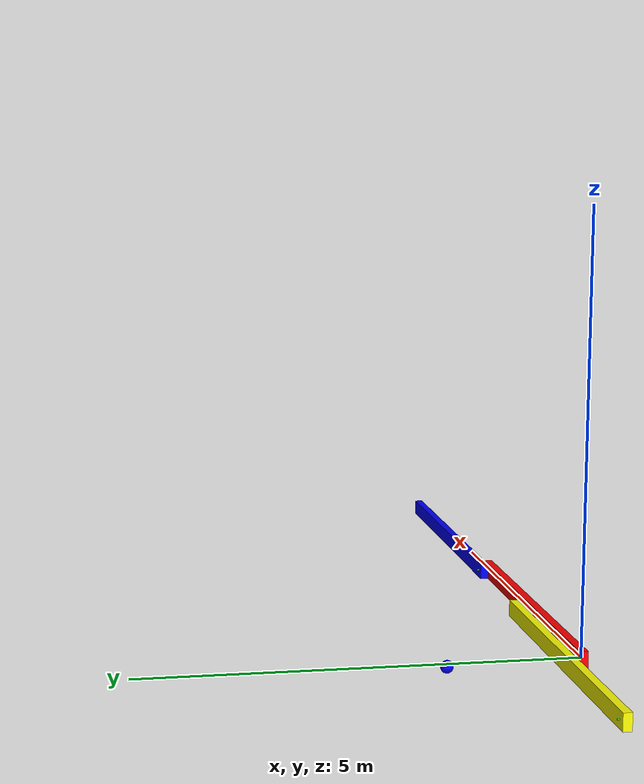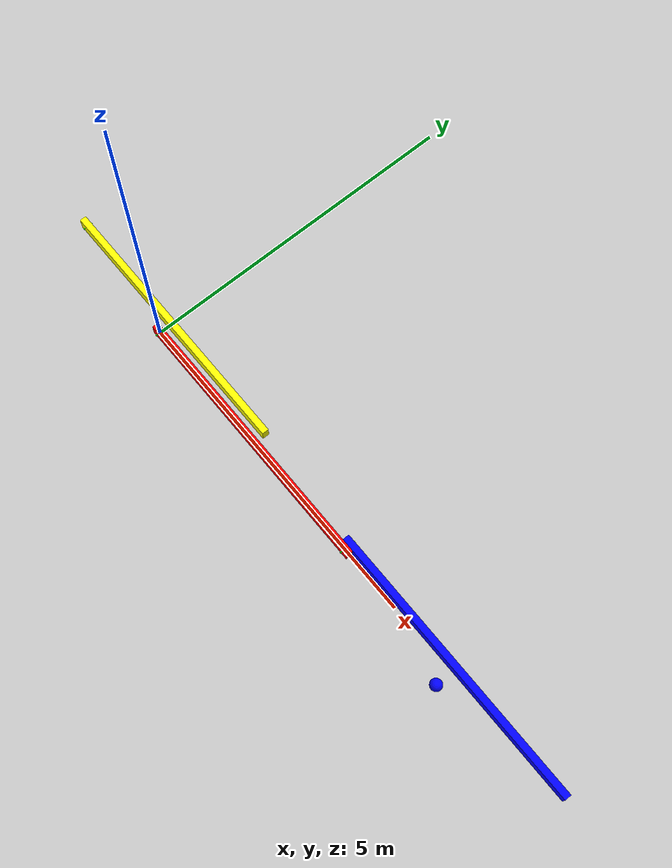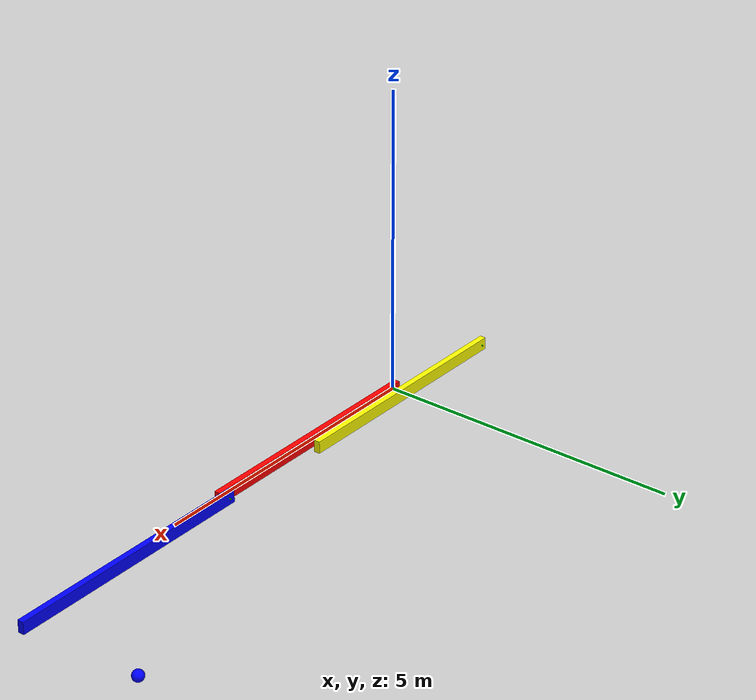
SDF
<?xml version='1.0'?>
<sdf version='1.7'>
  <model name='four_bar'>
    <link name='A'>
      <!-- The frame A measured in the world frame, X_WA is the identity. This
      link is also called 'Crank' in the diagram in README.md -->
      <inertial>
        <!-- Acm (A's center of mass) is located at the midpoint of the 4 meter long link. -->
        <pose>2 0 0 0 0 0</pose>
        <mass>20</mass>
        <inertia>
          <!-- Inertia tensor for a solid cuboid of dimensions
          (l, w, h) = (4.2 m, 0.1 m, 0.2 m) and mass 20 kg-->
          <ixx>0.08333333333333334</ixx>
          <iyy>29.46666666666666</iyy>
          <izz>29.416666666666668</izz>
          <ixy>0</ixy><ixz>0</ixz><iyz>0</iyz>
        </inertia>
      </inertial>
      <!-- A skinny red box along the Ax axis -->
      <visual name='A_visual'>
        <pose>2 0 0 0 0 0</pose>
        <geometry>
          <box>
            <size>4.2 0.1 0.2</size>
          </box>
        </geometry>
        <material>
          <diffuse>1 0 0 1</diffuse>
        </material>
      </visual>
      <!-- A visual representing the revolute joint between the world and
       link A. -->
      <visual name='A_pivot_visual'>
        <!-- Rotation around Ax by 90° = π/2 radians ≈ 1.57079632679 -->
        <pose>0 0 0 1.57079632679 0 0</pose>
        <geometry>
          <cylinder>
            <radius>0.01</radius>
            <length>0.15</length>
          </cylinder>
        </geometry>
        <material>
          <diffuse>0 1 0 1</diffuse>
        </material>
      </visual>
    </link>

    <link name='B'>
      <pose relative_to='A'>4 0.1 0 0 0 0</pose>
      <inertial>
        <!-- Bcm (B's center of mass) is located at the midpoint of the 4 meter long link. -->
        <pose>2 0 0 0 0 0</pose>
        <mass>20</mass>
        <inertia>
          <!-- Inertia tensor for a solid cuboid of dimensions
          (l, w, h) = (4.2 m, 0.1 m, 0.2 m) and mass 20 kg-->
          <ixx>0.08333333333333334</ixx>
          <iyy>29.46666666666666</iyy>
          <izz>29.416666666666668</izz>
          <ixy>0</ixy><ixz>0</ixz><iyz>0</iyz>
        </inertia>
      </inertial>
      <!-- A skinny blue box along the Bx axis -->
      <visual name='B_visual'>
        <pose>2 0 0 0 0 0</pose>
        <geometry>
          <box><size>4.2 0.1 0.2</size></box>
        </geometry>
        <material>
          <diffuse>0 0 1 1</diffuse>
        </material>
      </visual>
      <!-- A visual representing the revolute joint between
      link A and link B.  -->
      <visual name='B_pivot_visual'>
        <!-- Rotation around Bx by 90° = π/2 radians ≈ 1.57079632679 -->
        <pose>0 -0.05 0 1.57079632679 0 0</pose>
        <geometry>
          <cylinder>
            <radius>0.01</radius>
            <length>0.25</length>
          </cylinder>
        </geometry>
        <material>
          <diffuse>0 1 0 1</diffuse>
        </material>
      </visual>
      <!-- A visual representing the 'Coupler-Point' P -->
      <visual name='CouplerPoint'>
        <!-- Translation down Bx by 2 and down Bz by -2 -->
        <pose relative_to='B'>2 0 -2 0 0 0</pose>
        <geometry>
          <sphere>
            <radius>0.1</radius>
          </sphere>
        </geometry>
        <material>
          <diffuse>0 0 1 1</diffuse>
        </material>
      </visual>
    </link>

    <link name='C'>
      <pose>-2 0.2 0 0 0 0</pose>
      <inertial>
        <!-- Ccm (C's center of mass) is located at the midpoint of the 4 meter long link. -->
        <pose>2 0 0 0 0 0</pose>
        <mass>20</mass>
        <inertia>
          <!-- Inertia tensor for a solid cuboid of dimensions
          (l, w, h) = (4.2 m, 0.1 m, 0.2 m) and mass 20 kg-->
          <ixx>0.08333333333333334</ixx>
          <iyy>29.46666666666666</iyy>
          <izz>29.416666666666668</izz>
          <ixy>0</ixy><ixz>0</ixz><iyz>0</iyz>
        </inertia>
      </inertial>
      <!-- A skinny yellow box along the Bx axis -->
      <visual name='C_visual'>
        <pose>2 0 0 0 0 0</pose>
        <geometry>
          <box><size>4.2 0.1 0.2</size></box>
        </geometry>
        <material>
          <diffuse>1 1 0 1</diffuse>
        </material>
      </visual>
      <!-- A visual representing the revolute joint between the world
      and link C.  -->
      <visual name='C_pivot_visual'>
        <!-- Rotation around Cx by 90° = π/2 radians ≈ 1.57079632679 -->
        <pose>0 0 0 1.57079632679 0 0</pose>
        <geometry>
          <cylinder>
            <radius>0.01</radius>
            <length>0.15</length>
          </cylinder>
        </geometry>
        <material>
          <diffuse>0 1 0 1</diffuse>
        </material>
      </visual>
    </link>

    <joint name='joint_WA' type='revolute'>
      <child>A</child>
      <parent>world</parent>
      <axis>
        <!--
          This revolute joint's initial angle is
          tan⁻¹(√15) ≈ 1.318116071652818 ≈ 75.52°.
          See the README for more details.
        -->
        <initial_position>1.318116071652818</initial_position>
        <xyz>0 1 0</xyz>
        <limit>
          <!-- No limit provided. sdformat defaults to -1, which we parse as
               an actuated joint. -->
        </limit>
        <dynamics>
          <damping>0.0</damping>
        </dynamics>
        <use_parent_model_frame>1</use_parent_model_frame>
      </axis>
    </joint>

    <joint name='joint_AB' type='revolute'>
      <child>B</child>
      <parent>A</parent>
      <axis>
        <!--
          This revolute joint's initial angle is
          π − tan⁻¹(√15) ≈ 1.8234765819369751 ≈ 104.48°.
          See the README for more details.
        -->
        <initial_position>1.8234765819369751</initial_position>
        <xyz expressed_in='__model__'>0 1 0</xyz>
        <limit>
          <!-- An effort of 0 is parsed as an unactuated joint. -->
          <effort>0</effort>
        </limit>
        <dynamics>
          <damping>0.0</damping>
        </dynamics>
        <use_parent_model_frame>1</use_parent_model_frame>
      </axis>
    </joint>

    <joint name='joint_WC' type='revolute'>
      <child>C</child>
      <parent>world</parent>
      <axis>
        <!--
          This revolute joint's initial angle is
          π − tan⁻¹(√15) ≈ 1.8234765819369751 ≈ 104.48°.
          See the README for more details.
        -->
        <initial_position>1.8234765819369751</initial_position>
        <xyz expressed_in='__model__'>0 1 0</xyz>
        <limit>
          <!-- An effort of 0 is parsed as an unactuated joint. -->
          <effort>0</effort>
        </limit>
        <dynamics>
          <damping>0.0</damping>
        </dynamics>
      </axis>
    </joint>

    <frame name='Bc_bushing' attached_to='B'>
      <!-- This frame is rotated relative from link B, around Bx, by -90° = -π/2 radians ≈ -1.57079632679 -->
      <pose relative_to='B'>4 0 0 -1.57079632679 0 0</pose>
    </frame>

    <frame name='Cb_bushing' attached_to='C'>
      <!-- This frame is rotated relative from link C, around Cx, by -90° = -π/2 radians ≈ -1.57079632679 -->
      <pose relative_to='C'>4 0 0 -1.57079632679 0 0</pose>
    </frame>

  </model>
</sdf>
